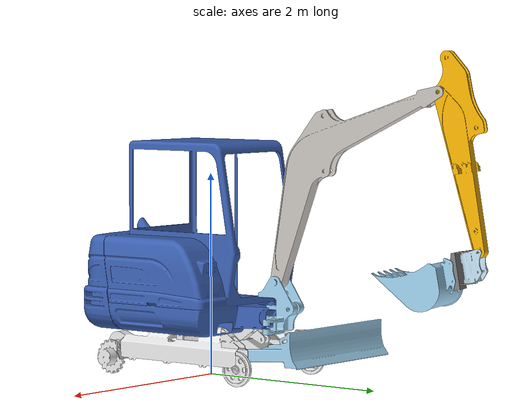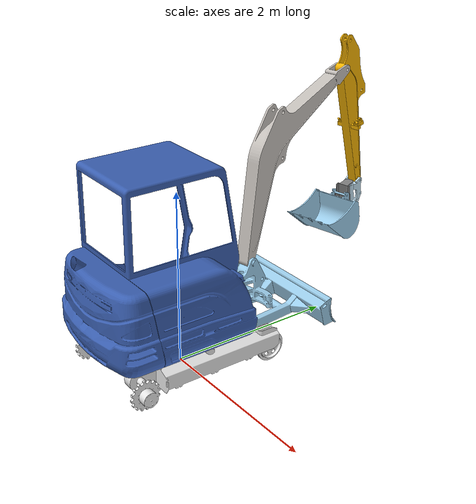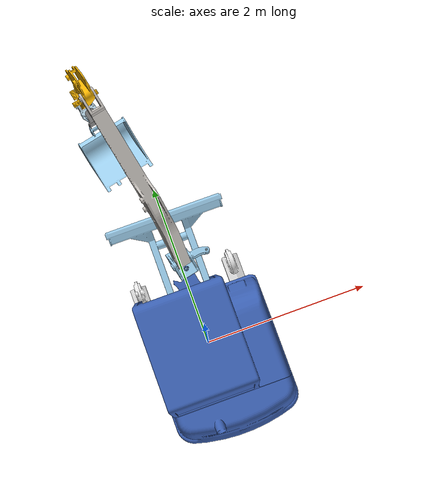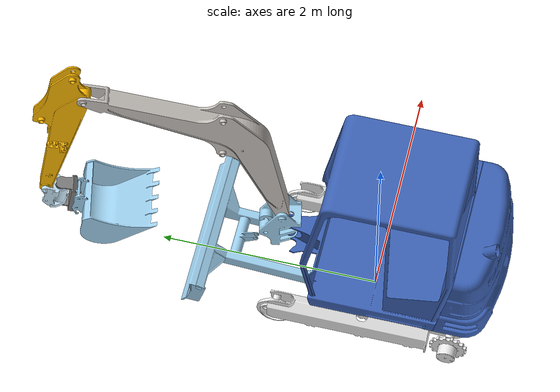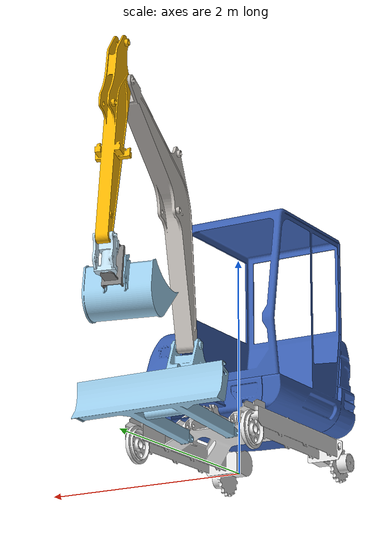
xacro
<?xml version="1.0"?>
<robot xmlns:xacro="http://www.ros.org/wiki/xacro" name="onshape">
    <link name="world"/>

    <xacro:property name="mesh_root" value="package://urdf_visualize/meshes"/>

    <xacro:property name="cabin_base_mesh" value="${mesh_root}/compact_excavator_cabin_body.stl"/>
    <xacro:property name="cabin_base_origin" value="0.1592 -0.2513 0.2814"/>
    <xacro:property name="cabin_base_rpy" value="0 0 0"/>
    <xacro:property name="cabin_base_mass" value="9732.8039"/>
    <xacro:property name="cabin_inertial_origin" value="-0.1469 0.4412 0.4509"/>
    <xacro:property name="cabin_inertial_rpy" value="0 0 0"/>
    <xacro:property name="cabin_base_material" value="0.2314 0.3804 0.7059 1.0"/>

    <xacro:property name="turret_base_mesh" value="${mesh_root}/compact_excavator_frame_body.stl"/>
    <xacro:property name="turret_base_origin" value="0 0 0"/>
    <xacro:property name="turret_base_rpy" value="0 0 0"/>
    <xacro:property name="turret_base_mass" value="459.1171"/>
    <xacro:property name="turret_base_inertial_origin" value="-0.0068 -0.1255 -0.1865"/>
    <xacro:property name="turret_base_inertial_rpy" value="0 0 0"/>
    <xacro:property name="turret_base_material" value="0.9176 0.9176 0.9176 1.0"/>

    <!-- Original base link -->
    <link name="base_link"/>
    <link name="cabin_base">
        <visual>
            <origin xyz="${cabin_base_origin}" rpy="${cabin_base_rpy}" />
            <geometry>
                <mesh filename="${cabin_base_mesh}"/>
            </geometry>
            <material name="compact_excavator_cabin_body_material">
                <color rgba="${cabin_base_material}"/>
            </material>
        </visual>
        <collision>
            <origin xyz="${cabin_base_origin}" rpy="${cabin_base_rpy}" />
            <geometry>
                <mesh filename="${cabin_base_mesh}"/>
            </geometry>
        </collision>
        <inertial>
            <origin xyz="${cabin_inertial_origin}" rpy="${cabin_inertial_rpy}"/>
            <mass value="${cabin_base_mass}" />
            <inertia ixx="3175.1655302028038932" ixy="-269.97312494382822479"  ixz="167.61780128589879268" iyy="2627.6328649732372469" iyz="-193.85494965010886403" izz="3742.616047274826542" />
        </inertial>
    </link>

    <link name="turret_base">
        <visual>
            <origin xyz="${turret_base_origin}" rpy="${turret_base_rpy}" />
            <geometry>
                <mesh filename="${turret_base_mesh}"/>
            </geometry>
            <material name="compact_excavator_frame_body_material">
                <color rgba="${turret_base_material}"/>
            </material>
        </visual>
        <collision>
            <origin xyz="${turret_base_origin}" rpy="${turret_base_rpy}" />
            <geometry>
                <mesh filename="${turret_base_mesh}"/>
            </geometry>
        </collision>
        <inertial>
            <origin xyz="${turret_base_inertial_origin}" rpy="${turret_base_inertial_rpy}"/>
            <mass value="${turret_base_mass}" />
            <inertia ixx="103.54309263053609413" ixy="2.8689912175751035583"  ixz="-0.26918599165092144121" iyy="71.550382439979060223" iyz="-8.7881744003938315757" izz="164.71779214088334697" />
        </inertial>
    </link>

    <link name="left_spinning_wheel_link">
        <visual>
            <origin xyz="0 -2.0816681711721685133e-17 -0.015000000000000124345" rpy="-4.71 0 0" />
            <geometry>
            <mesh filename="package://urdf_visualize/meshes/compact_excavator_main_drive_wheel.stl"/>
            </geometry>
            <material name="compact_excavator_main_drive_wheel_material">
            <color rgba="0.91764705882352937127 0.91764705882352937127 0.91764705882352937127 1.0"/>
            </material>
        </visual>
        <collision>
            <origin xyz="0 -2.0816681711721685133e-17 -0.015000000000000124345" rpy="-4.71 0 0" />
            <geometry>
            <mesh filename="package://urdf_visualize/meshes/compact_excavator_main_drive_wheel.stl"/>
            </geometry>
        </collision>
        <inertial>
            <origin xyz="2.7929494467705319618e-05 -2.4226277708340838271e-16 -0.047030821852304713349" rpy="0 0 0"/>
            <mass value="35.986291345795820007" />
            <inertia ixx="0.20071737580058110484" ixy="2.1151248144254331483e-17"  ixz="7.9696042408110000254e-05" iyy="0.20066206838835709547" iyz="2.9623558171777900037e-16" izz="0.29333573070696433716" />
        </inertial>
    </link>

    <link name="right_spinning_wheel_link">
        <visual>
            <origin xyz="-6.9388939039072283776e-18 0 -0.015000000000000013323" rpy="1.57 0 0" />
            <geometry>
            <mesh filename="package://urdf_visualize/meshes/compact_excavator_main_drive_wheel.stl"/>
            </geometry>
            <material name="compact_excavator_main_drive_wheel_material">
            <color rgba="0.91764705882352937127 0.91764705882352937127 0.91764705882352937127 1.0"/>
            </material>
        </visual>
        <collision>
            <origin xyz="-6.9388939039072283776e-18 0 -0.015000000000000013323" rpy="1.57 0 0" />
            <geometry>
            <mesh filename="package://urdf_visualize/meshes/compact_excavator_main_drive_wheel.stl"/>
            </geometry>
        </collision>
        <inertial>
            <origin xyz="2.7929494467698390888e-05 -2.2144767850277592569e-16 -0.047030821852304602326" rpy="0 0 0"/>
            <mass value="35.986291345795820007" />
            <inertia ixx="0.20071737580058127137" ixy="6.1250580134766935832e-18"  ixz="7.9696042408110027359e-05" iyy="0.20066206838835703996" iyz="2.9623106429686494369e-16" izz="0.29333573070696433716" />
        </inertial>
    </link>

    <link name="left_front_wheel_link">
        <visual>
            <origin xyz="1.1102230246251565404e-16 -1.1102230246251565404e-16 -0.032500000000000084377" rpy="0 1.570796326794896336 0" />
            <geometry>
            <mesh filename="package://urdf_visualize/meshes/compact_excavator_front_wheel.stl"/>
            </geometry>
            <material name="compact_excavator_front_wheel_material">
            <color rgba="0.91764705882352937127 0.91764705882352937127 0.91764705882352937127 1.0"/>
            </material>
        </visual>
        <collision>
            <origin xyz="1.1102230246251565404e-16 -1.1102230246251565404e-16 -0.032500000000000084377" rpy="0 1.570796326794896336 0" />
            <geometry>
            <mesh filename="package://urdf_visualize/meshes/compact_excavator_front_wheel.stl"/>
            </geometry>
        </collision>
        <inertial>
            <origin xyz="8.8979772495497043726e-17 -1.1262368284473494847e-16 -0.032500000000000070499" rpy="0 0 0"/>
            <mass value="17.64673591392957519" />
            <inertia ixx="0.153078316536178205" ixy="1.0629206596102168903e-17"  ixz="2.6922495826861160064e-17" iyy="0.15307831653617814949" iyz="6.9747558075870228735e-33" izz="0.29963755764746907717" />
        </inertial>
    </link>

    <link name="right_front_wheel_link">
        <visual>
            <origin xyz="0 0 -0.032500000000000084377" rpy="-3.14 -1.570796326794896336 0" />
            <geometry>
            <mesh filename="package://urdf_visualize/meshes/compact_excavator_front_wheel.stl"/>
            </geometry>
            <material name="compact_excavator_front_wheel_material">
            <color rgba="0.91764705882352937127 0.91764705882352937127 0.91764705882352937127 1.0"/>
            </material>
        </visual>
        <collision>
            <origin xyz="0 0 -0.032500000000000084377" rpy="-3.14 -1.570796326794896336 0" />
            <geometry>
            <mesh filename="package://urdf_visualize/meshes/compact_excavator_front_wheel.stl"/>
            </geometry>
        </collision>
        <inertial>
            <origin xyz="-2.2042529967018601071e-17 1.6013803822193002062e-18 -0.032500000000000098255" rpy="0 0 0"/>
            <mass value="17.64673591392957519" />
            <inertia ixx="0.153078316536178205" ixy="-3.7736718547636912232e-33"  ixz="-2.6922495826861147738e-17" iyy="0.153078316536178205" iyz="-6.9321227369532044948e-49" izz="0.29963755764746907717" />
        </inertial>
    </link>

    <link name="push_blade_bucket">
        <visual>
            <origin xyz="-0.021564399534920564161 1.0799900599760599018 -0.25500000000000000444" rpy="-3.14 -1.57 0" />
            <geometry>
            <mesh filename="package://urdf_visualize/meshes/push_blade_bucket.stl"/>
            </geometry>
            <material name="push_blade_bucket_material">
            <color rgba="0.61568627450980395466 0.81176470588235294379 0.92941176470588238168 1.0"/>
            </material>
        </visual>
        <collision>
            <origin xyz="-0.021564399534920564161 1.0799900599760599018 -0.25500000000000000444" rpy="-3.14 -1.57 0" />
            <geometry>
            <mesh filename="package://urdf_visualize/meshes/push_blade_bucket.stl"/>
            </geometry>
        </collision>
        <inertial>
            <origin xyz="-0.10970493109347190241 0.88075063461342828486 -0.25500033703320834633" rpy="0 0 0"/>
            <mass value="147.01808168083425699" />
            <inertia ixx="31.881096131626421197" ixy="0.91247385061899932701"  ixz="-1.6212090668492922982e-05" iyy="21.196220352263214437" iyz="4.9900082202379639952e-06" izz="13.169227707961496776" />
        </inertial>
    </link>

    <link name="swing_base">
        <visual>
            <origin xyz="2.7755575615628913511e-17 0.074999999999999955591 -0.14999999999999996669" rpy="-3.14 -6.1629758220391547298e-33 -3.9110122218931175387e-17" />
            <geometry>
            <mesh filename="package://urdf_visualize/meshes/part01_pin_1.stl"/>
            </geometry>
            <material name="part01_pin_1_material">
            <color rgba="0.61568627450980395466 0.81176470588235294379 0.92941176470588238168 1.0"/>
            </material>
        </visual>
        <collision>
            <origin xyz="2.7755575615628913511e-17 0.074999999999999955591 -0.14999999999999996669" rpy="-3.14 -6.1629758220391547298e-33 -3.9110122218931175387e-17" />
            <geometry>
            <mesh filename="package://urdf_visualize/meshes/part01_pin_1.stl"/>
            </geometry>
        </collision>
        <inertial>
            <origin xyz="-0.026030309007671018073 0.10672288733099301317 0.097553850513847364945" rpy="0 0 0"/>
            <mass value="98.140190062279060612" />
            <inertia ixx="2.6085778666185075458" ixy="0.040227300901953748358"  ixz="0.42136783119553594679" iyy="3.1665232143977135593" iyz="-0.15916376835413623136" izz="1.7889951810686841593" />
        </inertial>
    </link>

    <link name="boom_base">
        <visual>
            <origin xyz="0 -1.1102230246251565404e-16 -0.079999999999999987788" rpy="-1.57 0 0" />
            <geometry>
            <mesh filename="package://urdf_visualize/meshes/part02.stl"/>
            </geometry>
            <material name="part02_material">
            <color rgba="0.77647058823529413463 0.7568627450980391913 0.73725490196078435901 1.0"/>
            </material>
        </visual>
        <collision>
            <origin xyz="0 -1.1102230246251565404e-16 -0.079999999999999987788" rpy="-1.57 0 0" />
            <geometry>
            <mesh filename="package://urdf_visualize/meshes/part02.stl"/>
            </geometry>
        </collision>
        <inertial>
            <origin xyz="-0.04007940207094668611 1.215334476695421273 -0.079873417172118876817" rpy="0 0 0"/>
            <mass value="694.17793513858055121" />
            <inertia ixx="242.81245205849677404" ixy="71.370938403077758494"  ixz="0.0065905643878567711502" iyy="49.641340591529456105" iyz="-0.034260052091464154866" izz="289.83702909122945357" />
        </inertial>
    </link>

    <link name="arm_base">
        <visual>
            <origin xyz="0 -2.2204460492503130808e-16 -0.054999999999999882316" rpy="1.57 0 0" />
            <geometry>
            <mesh filename="package://urdf_visualize/meshes/part03.stl"/>
            </geometry>
            <material name="part03_material">
            <color rgba="0.98039215686274505668 0.71372549019607844922 0.0039215686274509803377 1.0"/>
            </material>
        </visual>
        <collision>
            <origin xyz="0 -2.2204460492503130808e-16 -0.054999999999999882316" rpy="1.57 0 0" />
            <geometry>
            <mesh filename="package://urdf_visualize/meshes/part03.stl"/>
            </geometry>
        </collision>
        <inertial>
            <origin xyz="0.10866226733951289685 -0.60164797350906107365 -0.055167291851018741833" rpy="0 0 0"/>
            <mass value="265.34907807560875881" />
            <inertia ixx="57.599134249663784146" ixy="0.078442580554215754485"  ixz="0.0049826290162324230956" iyy="1.8968981412117758012" iyz="0.02459901605653430981" izz="58.868680211308259231" />
        </inertial>
    </link>

    <link name="bucket_base">
        <visual>
            <origin xyz="0.060000000000000053291 0.14000000000000012434 0.054999999999999993339" rpy="-3.14 -1.57 0" />
            <geometry>
            <mesh filename="package://urdf_visualize/meshes/part04.stl"/>
            </geometry>
            <material name="part04_material">
            <color rgba="0.76862745098039220171 0.88627450980392152857 0.95294117647058818044 1.0"/>
            </material>
        </visual>
        <collision>
            <origin xyz="0.060000000000000053291 0.14000000000000012434 0.054999999999999993339" rpy="-3.14 -1.57 0" />
            <geometry>
            <mesh filename="package://urdf_visualize/meshes/part04.stl"/>
            </geometry>
        </collision>

        <visual>
            <origin xyz="0.078718096856630614955 0.97961106773940276327 0.054999999999992416067" rpy="-1.57 0 3" />
            <geometry>
            <mesh filename="package://urdf_visualize/meshes/bucket.stl"/>
            </geometry>
            <material name="bucket_material">
            <color rgba="0.61568627450980395466 0.81176470588235294379 0.92941176470588238168 1.0"/>
            </material>
        </visual>
        <collision>
            <origin xyz="0.078718096856630614955 0.97961106773940276327 0.054999999999992416067" rpy="-1.57 0 3" />
            <geometry>
            <mesh filename="package://urdf_visualize/meshes/bucket.stl"/>
            </geometry>
        </collision>

        <visual>
            <origin xyz="0.16999999999999237943 0.30800000000000604672 0.054999999999999299449" rpy="-4.71 -1.57 0" />
            <geometry>
            <mesh filename="package://urdf_visualize/meshes/bucket_mount.stl"/>
            </geometry>
            <material name="bucket_mount_material">
            <color rgba="0.49803921568627451677 0.49803921568627451677 0.49803921568627451677 1.0"/>
            </material>
        </visual>
        <collision>
            <origin xyz="0.16999999999999237943 0.30800000000000604672 0.054999999999999299449" rpy="-4.71 -1.57 0" />
            <geometry>
            <mesh filename="package://urdf_visualize/meshes/bucket_mount.stl"/>
            </geometry>
        </collision>
        <inertial>
            <origin xyz="0.21363777998579594475 0.42618058483691984017 0.055071497454761988988" rpy="0 0 0"/>
            <mass value="132.70765933863819441" />
            <inertia ixx="14.03567187790122972" ixy="-1.6652440163767181502"  ixz="0.0020270508814650067472" iyy="6.8549730106956987541" iyz="0.0040437120644442776929" izz="11.610921270718170817" />
        </inertial>
    </link>

    <joint name="world_to_base_link" type="fixed">
        <parent link="world"/>
        <child link="base_link"/>
        <origin xyz="0 0 0" rpy="0 0 0"/>
    </joint>

    <joint name="base_to_turret" type="fixed">
        <origin xyz="0 0 0.45" rpy="0 0 0" />
        <parent link="base_link" />
        <child link="turret_base" />
        <axis xyz="0 0 1"/>
    </joint>

    <joint name="left_spinning_wheel" type="continuous">
        <origin xyz="-0.5739999999999999547 -0.80000000000000015543 -0.2750000000000000222" rpy="1.570796326794896558 -0.3547477759675310427 1.5707963267948976682" />
        <parent link="turret_base" />
        <child link="left_spinning_wheel_link" />
        <axis xyz="0 0 1"/>
        <limit effort="1" velocity="20" />
        <joint_properties friction="0.0"/>
    </joint>

    <joint name="right_spinning_wheel" type="continuous">
        <origin xyz="0.5739999999999999547 -0.80000000000000004441 -0.2750000000000000222" rpy="1.570796326794896558 -1.2984776443375001254 -1.5707963267948972241" />
        <parent link="turret_base" />
        <child link="right_spinning_wheel_link" />
        <axis xyz="0 0 1"/>
        <limit effort="1" velocity="20" />
        <joint_properties friction="0.0"/>
    </joint>

    <joint name="left_passive_wheel" type="continuous">
        <origin xyz="-0.61299999999999998934 0.80000000000000026645 -0.2750000000000000222" rpy="1.570796326794896558 -1.0222876983448163646 -1.5707963267948941155" />
        <parent link="turret_base" />
        <child link="left_front_wheel_link" />
        <axis xyz="0 0 1"/>
        <limit effort="1" velocity="20" />
        <joint_properties friction="0.0"/>
    </joint>

    <joint name="right_passive_wheel" type="continuous">
        <origin xyz="0.54800000000000004263 0.80000000000000015543 -0.27499999999999996669" rpy="1.57079632679489678 -1.1102232252180887662e-16 -1.5707963267948976682" />
        <parent link="turret_base" />
        <child link="right_front_wheel_link" />
        <axis xyz="0 0 1"/>
        <limit effort="1" velocity="20" />
        <joint_properties friction="0.0"/>
    </joint>

    <joint name="plow_to_base" type="revolute">
        <origin xyz="-0.25500000000000005995 0.4880000000000002669 -0.20500000000000001554" rpy="1.570796326794896558 -1.3195606112546109934 -1.57079632679489678" />
        <parent link="turret_base" />
        <child link="push_blade_bucket" />
        <axis xyz="0 0 1"/>
        <limit effort="1" velocity="20" lower="0.2" upper="0" />
        <joint_properties friction="0.0"/>
    </joint>

    <joint name="slew" type="continuous">
        <origin xyz="0 0 0" rpy="-5.5511151231419568159e-17 -1.1102230246202266528e-16 -3.1415" />
        <parent link="turret_base" />
        <child link="cabin_base" />
        <axis xyz="0 0 1"/>
        <limit effort="1" velocity="20" />
        <joint_properties friction="0.0"/>
    </joint>

    <joint name="bucket_to_arm" type="revolute">
        <origin xyz="0.12000000000000410338 -1.5403327562575612752 9.4368957093138305936e-16" rpy="3.1415926535897917837 1.8859935444767496044e-16 -1.5963552846072552871" />
        <parent link="arm_base" />
        <child link="bucket_base" />
        <axis xyz="0 0 1"/>
        <limit effort="1" velocity="20" lower="-1.2217304763960306069" upper="0.87266462599716476678"/>
        <joint_properties friction="0.0"/>
    </joint>

    <joint name="arm_to_boom" type="revolute">
        <origin xyz="-0.84000000000000030198 2.3549999999999999822 -0.13500000000000003664" rpy="3.1415926535897922278 6.9325343981756730312e-15 2.5555644018935783635" />
        <parent link="boom_base" />
        <child link="arm_base" />
        <axis xyz="0 0 1"/>
        <limit effort="1" velocity="20" lower="-0.5" upper="1.57"/>
        <joint_properties friction="0.0"/>
    </joint>

    <joint name="boom_to_swing" type="revolute">
        <origin xyz="0.079999999999996157518 0.074999999999997291056 -0.1500000000000039635" rpy="-1.570796326794896558 0.39285813115170314935 -1.5707963267949009989" />
        <parent link="swing_base" />
        <child link="boom_base" />
        <axis xyz="0 0 1"/>
        <limit effort="1" velocity="20" lower="-0.4" upper="0.4" />
        <joint_properties friction="0.0"/>
    </joint>

    <joint name="swing_to_cabin" type="revolute">
        <origin xyz="-0.040707723917193447405 -0.80673603465099630316 0.38039999999999996039" rpy="3.141592653589793116 4.8797124238540929311e-17 0.21446312817660284633" />
        <parent link="cabin_base" />
        <child link="swing_base" />
        <axis xyz="0 0 1"/>
        <limit effort="1" velocity="20" lower="-1" upper="1.57" />
        <joint_properties friction="0.0"/>
    </joint>

</robot>
